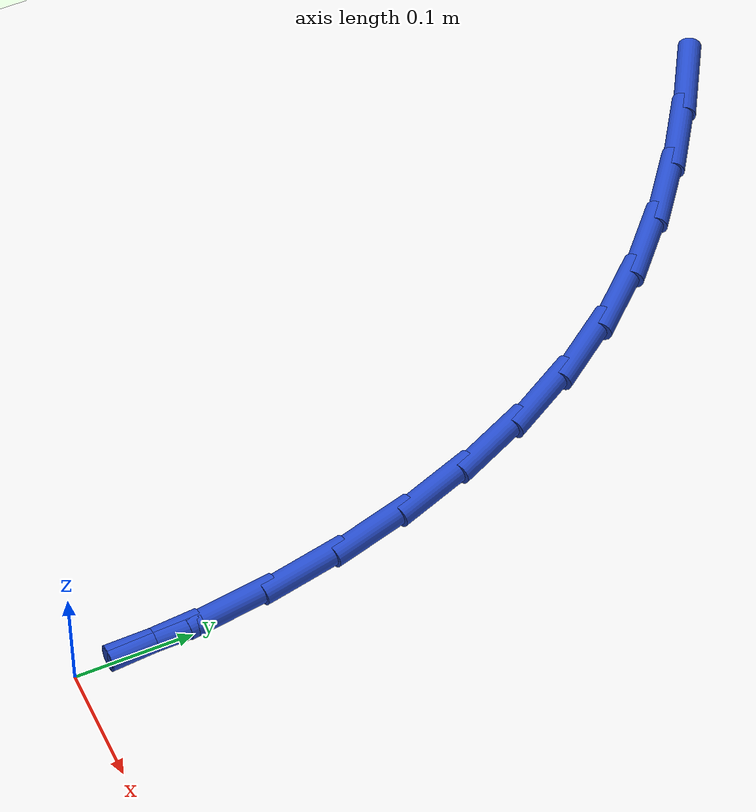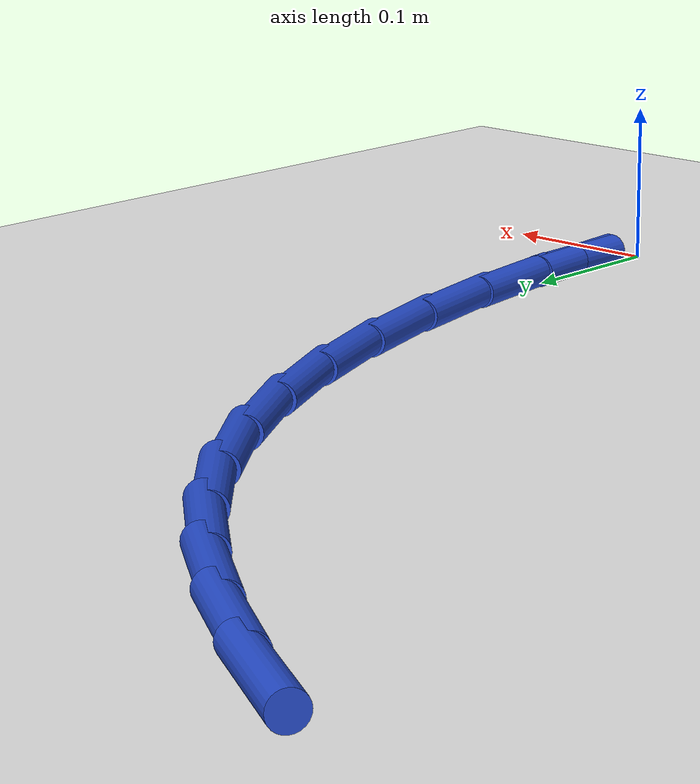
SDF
<sdf version="1.6">
 <world name="default">
  <model name="ground_plane">
   <static>1</static>
   <link name="link">
    <collision name="collision">
     <geometry><plane><normal>0 0 1</normal><size>100 100</size></plane></geometry>
     <surface><friction><ode><mu>100</mu><mu2>50</mu2></ode></friction></surface>
    </collision>
    <visual name="visual">
     <cast_shadows>0</cast_shadows>
     <geometry><plane><normal>0 0 1</normal><size>100 100</size></plane></geometry>
     <material>
      <script><uri>file://media/materials/scripts/gazebo.material</uri><name>Gazebo/WhiteGlow</name></script>
     </material>
    </visual>
   </link>
  </model>
  <model name="line">
   <link name="link_1">
    <pose>-0.001105520783563661 0.06754539717921675 0.01 0 1.57 -1.494989687990288</pose>
    <collision name="collision">
     <geometry><cylinder><radius>0.01</radius><length>0.08</length></cylinder></geometry>
    </collision>
    <visual name="visual">
     <material>
      <script><name>Gazebo/Blue</name><uri>file://media/materials/scripts/gazebo.material</uri></script>
     </material>
     <geometry><cylinder><radius>0.01</radius><length>0.08</length></cylinder></geometry>
    </visual>
   </link>
   <link name="link_2">
    <pose>-0.006210088078245076 0.134753039926609 0.01 0 1.57 -1.4322437679378381</pose>
    <collision name="collision">
     <geometry><cylinder><radius>0.01</radius><length>0.08</length></cylinder></geometry>
    </collision>
    <visual name="visual">
     <material>
      <script><name>Gazebo/Blue</name><uri>file://media/materials/scripts/gazebo.material</uri></script>
     </material>
     <geometry><cylinder><radius>0.01</radius><length>0.08</length></cylinder></geometry>
    </visual>
   </link>
   <link name="link_3">
    <pose>-0.015458032706525373 0.20107221738928485 0.01 0 1.57 -1.365120496526033</pose>
    <collision name="collision">
     <geometry><cylinder><radius>0.01</radius><length>0.08</length></cylinder></geometry>
    </collision>
    <visual name="visual">
     <material>
      <script><name>Gazebo/Blue</name><uri>file://media/materials/scripts/gazebo.material</uri></script>
     </material>
     <geometry><cylinder><radius>0.01</radius><length>0.08</length></cylinder></geometry>
    </visual>
   </link>
   <link name="link_4">
    <pose>-0.02899368549088578 0.2659522187143525 0.01 0 1.57 -1.2925100797642148</pose>
    <collision name="collision">
     <geometry><cylinder><radius>0.01</radius><length>0.08</length></cylinder></geometry>
    </collision>
    <visual name="visual">
     <material>
      <script><name>Gazebo/Blue</name><uri>file://media/materials/scripts/gazebo.material</uri></script>
     </material>
     <geometry><cylinder><radius>0.01</radius><length>0.08</length></cylinder></geometry>
    </visual>
   </link>
   <link name="link_5">
    <pose>-0.0469613772538075 0.3288423330489198 0.01 0 1.57 -1.213290229166685</pose>
    <collision name="collision">
     <geometry><cylinder><radius>0.01</radius><length>0.08</length></cylinder></geometry>
    </collision>
    <visual name="visual">
     <material>
      <script><name>Gazebo/Blue</name><uri>file://media/materials/scripts/gazebo.material</uri></script>
     </material>
     <geometry><cylinder><radius>0.01</radius><length>0.08</length></cylinder></geometry>
    </visual>
   </link>
   <link name="link_6">
    <pose>-0.06950543881777169 0.38919184954009484 0.01 0 1.57 -1.1263920802595222</pose>
    <collision name="collision">
     <geometry><cylinder><radius>0.01</radius><length>0.08</length></cylinder></geometry>
    </collision>
    <visual name="visual">
     <material>
      <script><name>Gazebo/Blue</name><uri>file://media/materials/scripts/gazebo.material</uri></script>
     </material>
     <geometry><cylinder><radius>0.01</radius><length>0.08</length></cylinder></geometry>
    </visual>
   </link>
   <link name="link_7">
    <pose>-0.09677020100525957 0.4464500573349859 0.01 0 1.57 -1.0309244610986765</pose>
    <collision name="collision">
     <geometry><cylinder><radius>0.01</radius><length>0.08</length></cylinder></geometry>
    </collision>
    <visual name="visual">
     <material>
      <script><name>Gazebo/Blue</name><uri>file://media/materials/scripts/gazebo.material</uri></script>
     </material>
     <geometry><cylinder><radius>0.01</radius><length>0.08</length></cylinder></geometry>
    </visual>
   </link>
   <link name="link_8">
    <pose>-0.12889999463875243 0.5000662455807009 0.01 0 1.57 -0.9263906554531242</pose>
    <collision name="collision">
     <geometry><cylinder><radius>0.01</radius><length>0.08</length></cylinder></geometry>
    </collision>
    <visual name="visual">
     <material>
      <script><name>Gazebo/Blue</name><uri>file://media/materials/scripts/gazebo.material</uri></script>
     </material>
     <geometry><cylinder><radius>0.01</radius><length>0.08</length></cylinder></geometry>
    </visual>
   </link>
   <link name="link_9">
    <pose>-0.166038349189033 0.5494908474658964 0.01 0 1.57 -0.8185779933246268</pose>
    <collision name="collision">
     <geometry><cylinder><radius>0.01</radius><length>0.08</length></cylinder></geometry>
    </collision>
    <visual name="visual">
     <material>
      <script><name>Gazebo/Blue</name><uri>file://media/materials/scripts/gazebo.material</uri></script>
     </material>
     <geometry><cylinder><radius>0.01</radius><length>0.08</length></cylinder></geometry>
    </visual>
   </link>
   <link name="link_10">
    <pose>-0.20812417601209052 0.5944664171360313 0.01 0 1.57 -0.7220114772902734</pose>
    <collision name="collision">
     <geometry><cylinder><radius>0.01</radius><length>0.08</length></cylinder></geometry>
    </collision>
    <visual name="visual">
     <material>
      <script><name>Gazebo/Blue</name><uri>file://media/materials/scripts/gazebo.material</uri></script>
     </material>
     <geometry><cylinder><radius>0.01</radius><length>0.08</length></cylinder></geometry>
    </visual>
   </link>
   <link name="link_11">
    <pose>-0.25462149161331527 0.6354134875082766 0.01 0 1.57 -0.639748105868446</pose>
    <collision name="collision">
     <geometry><cylinder><radius>0.01</radius><length>0.08</length></cylinder></geometry>
    </collision>
    <visual name="visual">
     <material>
      <script><name>Gazebo/Blue</name><uri>file://media/materials/scripts/gazebo.material</uri></script>
     </material>
     <geometry><cylinder><radius>0.01</radius><length>0.08</length></cylinder></geometry>
    </visual>
   </link>
   <link name="link_12">
    <pose>-0.30492711002245093 0.6728485324261746 0.01 0 1.57 -0.5718627239235873</pose>
    <collision name="collision">
     <geometry><cylinder><radius>0.01</radius><length>0.08</length></cylinder></geometry>
    </collision>
    <visual name="visual">
     <material>
      <script><name>Gazebo/Blue</name><uri>file://media/materials/scripts/gazebo.material</uri></script>
     </material>
     <geometry><cylinder><radius>0.01</radius><length>0.08</length></cylinder></geometry>
    </visual>
   </link>
   <link name="link_13">
    <pose>-0.3584378452692409 0.7072880257332662 0.01 0 1.57 -0.5177482794123226</pose>
    <collision name="collision">
     <geometry><cylinder><radius>0.01</radius><length>0.08</length></cylinder></geometry>
    </collision>
    <visual name="visual">
     <material>
      <script><name>Gazebo/Blue</name><uri>file://media/materials/scripts/gazebo.material</uri></script>
     </material>
     <geometry><cylinder><radius>0.01</radius><length>0.08</length></cylinder></geometry>
    </visual>
   </link>
   <link name="link_111">
    <pose>-0.0010791874223377435 0.06756955826177986 0.01 0 1.57 -1.5548261813444542</pose>
    <collision name="collision">
     <geometry><cylinder><radius>0.01</radius><length>0.08</length></cylinder></geometry>
    </collision>
    <visual name="visual">
     <material>
      <script><name>Gazebo/Blue</name><uri>file://media/materials/scripts/gazebo.material</uri></script>
     </material>
     <geometry><cylinder><radius>0.01</radius><length>0.08</length></cylinder></geometry>
    </visual>
   </link>
  </model>
 </world>
</sdf>
